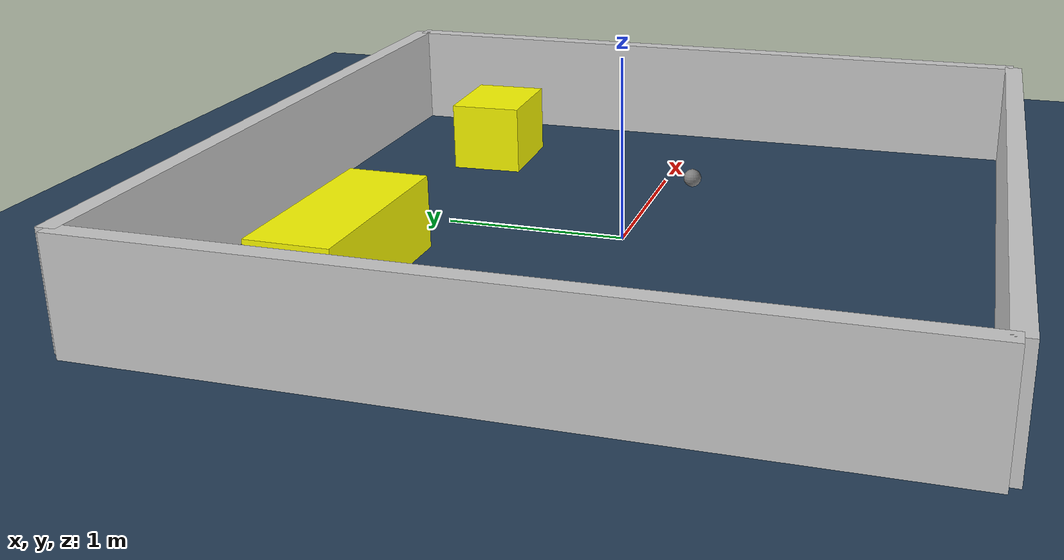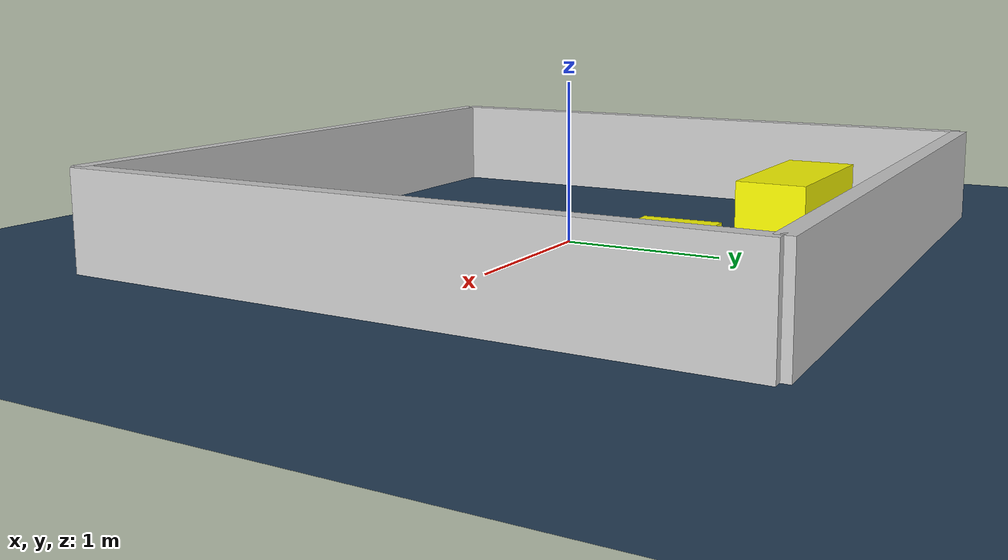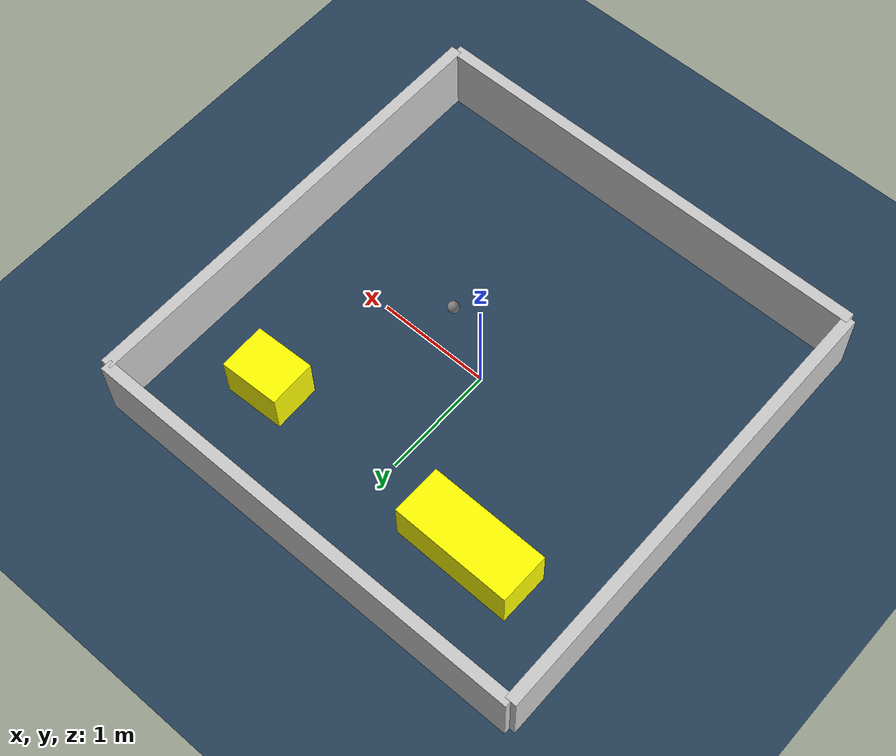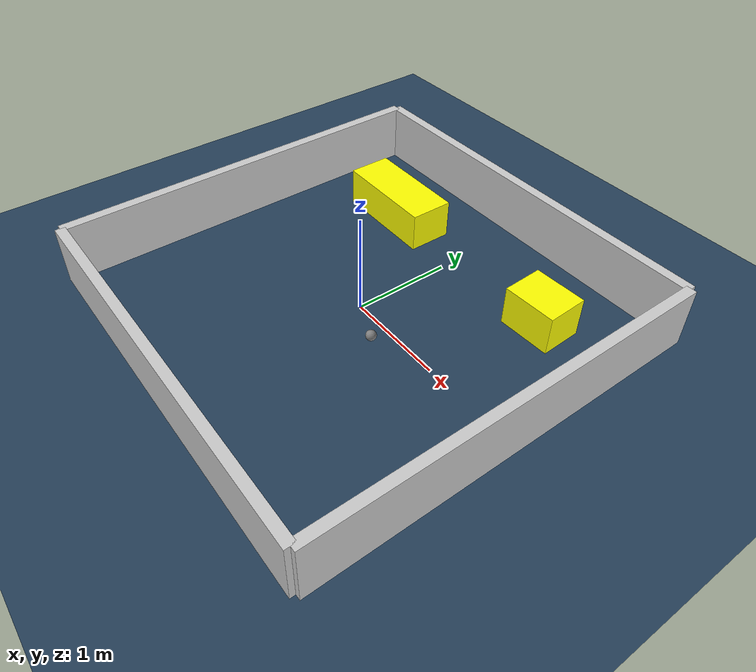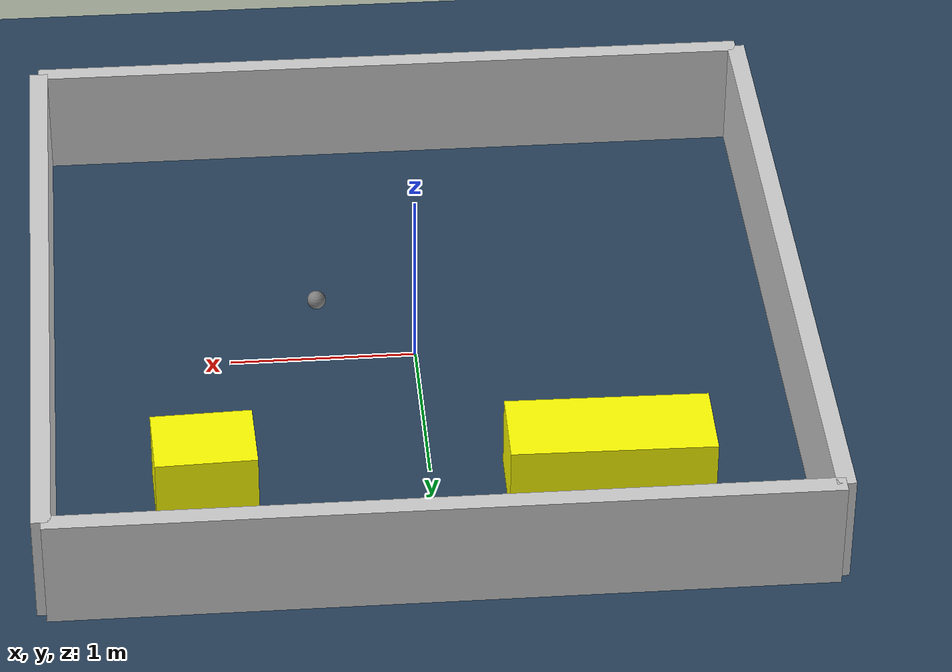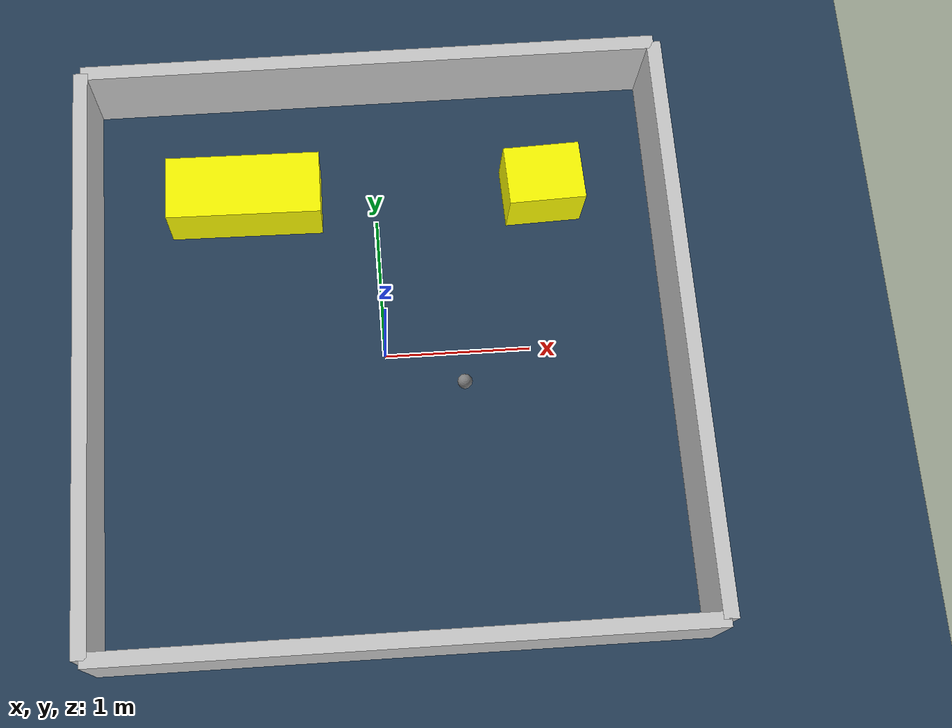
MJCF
<?xml version="1.0" ?>
<mujoco model="generated_environment">
  <option timestep="0.01" integrator="RK4" cone="elliptic"/>
  <default>
    <geom density="1"/>
  </default>
  <asset>
    <texture builtin="gradient" height="3072" rgb1="0.3 0.5 0.7" rgb2="0 0 0" type="skybox" width="512"/>
    <texture builtin="checker" height="300" mark="edge" markrgb="0.8 0.8 0.8" name="groundplane" rgb1="0.2 0.3 0.4" rgb2="0.1 0.2 0.3" type="2d" width="300"/>
    <material name="groundplane" reflectance="0.2" texrepeat="5 5" texture="groundplane" texuniform="true"/>
    <material name="robot" rgba="0.0 1.0 0.0 1"/>
  </asset>
  <worldbody>
    <light dir="0 0 -1" directional="true" pos="0 0 1.5"/>
    <geom condim="4" friction="1.0 0.005 0.001" material="groundplane" name="floor" size="0 0 0.05" type="plane"/>
    <body name="walls">
      <geom name="wall_1" condim="4" pos="-2.0 0.0 0.3" rgba="0.800000011920929 0.800000011920929 0.800000011920929 1.0" size="0.05 2.0 0.3" type="box"/>
      <geom name="wall_2" condim="4" pos="2.0 0.0 0.3" rgba="0.800000011920929 0.800000011920929 0.800000011920929 1.0" size="0.05 2.0 0.3" type="box"/>
      <geom name="wall_3" condim="4" pos="0.0 -2.0 0.3" rgba="0.800000011920929 0.800000011920929 0.800000011920929 1.0" size="2.0 0.05 0.3" type="box"/>
      <geom name="wall_4" condim="4" pos="0.0 2.0 0.3" rgba="0.800000011920929 0.800000011920929 0.800000011920929 1.0" size="2.0 0.05 0.3" type="box"/>
    </body>
    <body name="robot">
      <joint name="joint_x" type="slide" pos="0 0 0" axis="1 0 0"/>
      <joint name="joint_y" type="slide" pos="0 0 0" axis="0 1 0"/>
      <geom name="robot" type="sphere" pos="0.5190317764181 -0.26896778620477924 0.2" size="0.05" mass="5." friction="1.0 0.005 0.0001" condim="4"/>
      <site name="sensor_ball"/>
    </body>
    <body name="obstacle_1_movable">
      <geom name="obstacle_1_movable" condim="4" pos="-0.9178168786815362 1.1826508691943236 0.2" euler="0 0 269.22915300131854" friction="1.0 0.005 0.001" rgba="1 1 0 1" size="0.2224368224016912 0.5332075914693906 0.2" type="box" mass="0.1"/>
      <joint type="free"/>
    </body>
    <body name="obstacle_2_movable">
      <geom name="obstacle_2_movable" condim="4" pos="1.1753155282458685 1.1434642708131837 0.2" euler="0 0 92.00534640755818" friction="1.0 0.005 0.001" rgba="1 1 0 1" size="0.20741670569705378 0.26429872454167713 0.2" type="box" mass="0.1"/>
      <joint type="free"/>
    </body>
  </worldbody>
  <actuator>
    <motor name="actuator_x" joint="joint_x" gear="1" ctrlrange="-1 1"/>
    <motor name="actuator_y" joint="joint_y" gear="1" ctrlrange="-1 1"/>
  </actuator>
</mujoco>
